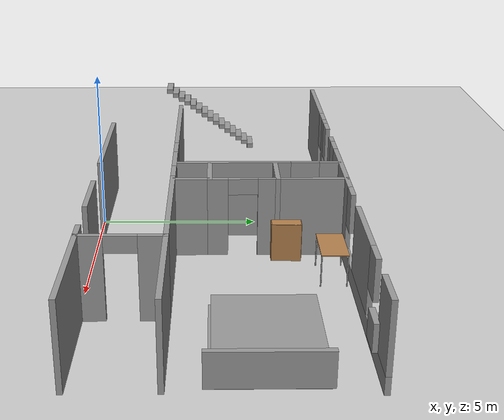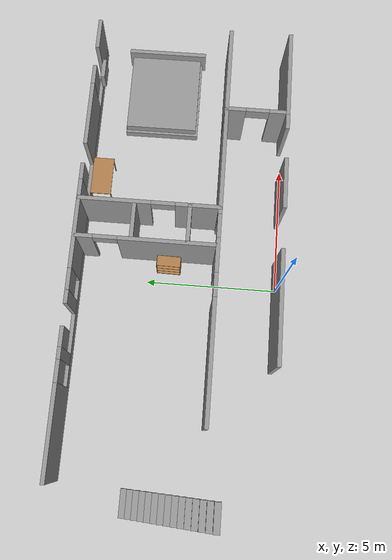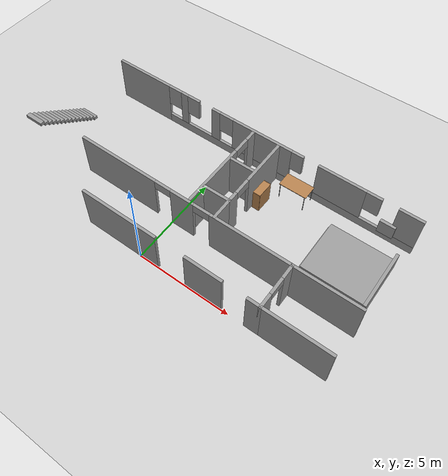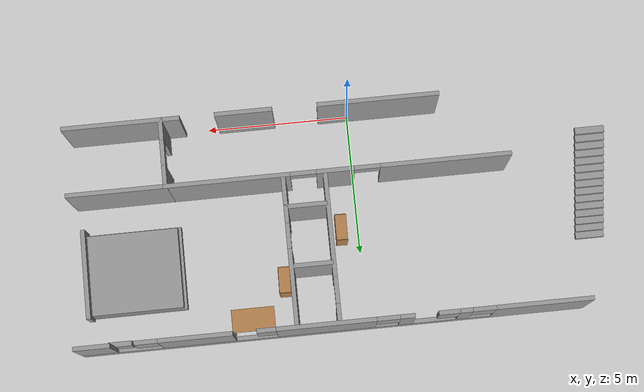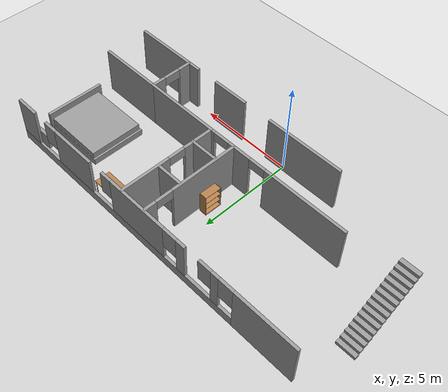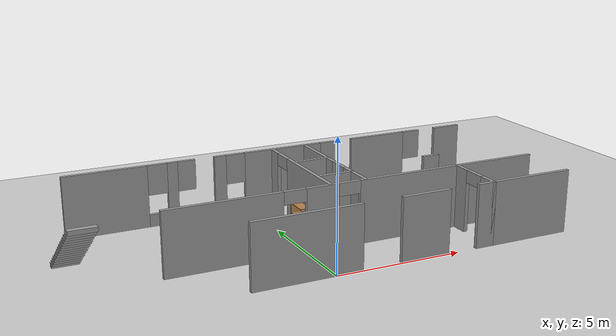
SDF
<sdf version="1.6">
 <world name="default">
  <model name="ground_plane">
   <static>1</static>
   <link name="link">
    <collision name="collision">
     <geometry><plane><normal>0 0 1</normal><size>100 100</size></plane></geometry>
     <surface>
      <contact><collide_bitmask>65535</collide_bitmask></contact>
      <friction><ode><mu>100</mu><mu2>50</mu2></ode></friction>
     </surface>
    </collision>
    <visual name="visual">
     <cast_shadows>0</cast_shadows>
     <geometry><plane><normal>0 0 1</normal><size>100 100</size></plane></geometry>
     <material>
      <script><uri>file://media/materials/scripts/gazebo.material</uri><name>Gazebo/Grey</name></script>
     </material>
    </visual>
   </link>
  </model>
  <model name="spruce1st">
   <pose>-3.08285 0.81707 0 0 -0 0</pose>
   <link name="Stairs_0">
    <visual name="Stairs_0_Visual_0">
     <pose>-5.10481 4.33782 0.083333 0 -0 0</pose>
     <geometry><box><size>1 0.233333 0.166667</size></box></geometry>
     <material>
      <script><uri>file://media/materials/scripts/gazebo.material</uri><name>Gazebo/Grey</name></script>
      <ambient>1 1 1 1</ambient>
     </material>
     <meta><layer>0</layer></meta>
    </visual>
    <collision name="Stairs_0_Collision_0">
     <geometry><box><size>1 0.233333 0.166667</size></box></geometry>
     <pose>-5.10481 4.33782 0.083333 0 -0 0</pose>
    </collision>
    <visual name="Stairs_0_Visual_1">
     <pose>-5.10481 4.10449 0.25 0 -0 0</pose>
     <geometry><box><size>1 0.233333 0.166667</size></box></geometry>
     <material>
      <script><uri>file://media/materials/scripts/gazebo.material</uri><name>Gazebo/Grey</name></script>
      <ambient>1 1 1 1</ambient>
     </material>
     <meta><layer>0</layer></meta>
    </visual>
    <collision name="Stairs_0_Collision_1">
     <geometry><box><size>1 0.233333 0.166667</size></box></geometry>
     <pose>-5.10481 4.10449 0.25 0 -0 0</pose>
    </collision>
    <visual name="Stairs_0_Visual_2">
     <pose>-5.10481 3.87116 0.416667 0 -0 0</pose>
     <geometry><box><size>1 0.233333 0.166667</size></box></geometry>
     <material>
      <script><uri>file://media/materials/scripts/gazebo.material</uri><name>Gazebo/Grey</name></script>
      <ambient>1 1 1 1</ambient>
     </material>
     <meta><layer>0</layer></meta>
    </visual>
    <collision name="Stairs_0_Collision_2">
     <geometry><box><size>1 0.233333 0.166667</size></box></geometry>
     <pose>-5.10481 3.87116 0.416667 0 -0 0</pose>
    </collision>
    <visual name="Stairs_0_Visual_3">
     <pose>-5.10481 3.63782 0.583333 0 -0 0</pose>
     <geometry><box><size>1 0.233333 0.166667</size></box></geometry>
     <material>
      <script><uri>file://media/materials/scripts/gazebo.material</uri><name>Gazebo/Grey</name></script>
      <ambient>1 1 1 1</ambient>
     </material>
     <meta><layer>0</layer></meta>
    </visual>
    <collision name="Stairs_0_Collision_3">
     <geometry><box><size>1 0.233333 0.166667</size></box></geometry>
     <pose>-5.10481 3.63782 0.583333 0 -0 0</pose>
    </collision>
    <visual name="Stairs_0_Visual_4">
     <pose>-5.10481 3.40449 0.75 0 -0 0</pose>
     <geometry><box><size>1 0.233333 0.166667</size></box></geometry>
     <material>
      <script><uri>file://media/materials/scripts/gazebo.material</uri><name>Gazebo/Grey</name></script>
      <ambient>1 1 1 1</ambient>
     </material>
     <meta><layer>0</layer></meta>
    </visual>
    <collision name="Stairs_0_Collision_4">
     <geometry><box><size>1 0.233333 0.166667</size></box></geometry>
     <pose>-5.10481 3.40449 0.75 0 -0 0</pose>
    </collision>
    <visual name="Stairs_0_Visual_5">
     <pose>-5.10481 3.17116 0.916667 0 -0 0</pose>
     <geometry><box><size>1 0.233333 0.166667</size></box></geometry>
     <material>
      <script><uri>file://media/materials/scripts/gazebo.material</uri><name>Gazebo/Grey</name></script>
      <ambient>1 1 1 1</ambient>
     </material>
     <meta><layer>0</layer></meta>
    </visual>
    <collision name="Stairs_0_Collision_5">
     <geometry><box><size>1 0.233333 0.166667</size></box></geometry>
     <pose>-5.10481 3.17116 0.916667 0 -0 0</pose>
    </collision>
    <visual name="Stairs_0_Visual_6">
     <pose>-5.10481 2.93782 1.08333 0 -0 0</pose>
     <geometry><box><size>1 0.233333 0.166667</size></box></geometry>
     <material>
      <script><uri>file://media/materials/scripts/gazebo.material</uri><name>Gazebo/Grey</name></script>
      <ambient>1 1 1 1</ambient>
     </material>
     <meta><layer>0</layer></meta>
    </visual>
    <collision name="Stairs_0_Collision_6">
     <geometry><box><size>1 0.233333 0.166667</size></box></geometry>
     <pose>-5.10481 2.93782 1.08333 0 -0 0</pose>
    </collision>
    <visual name="Stairs_0_Visual_7">
     <pose>-5.10481 2.70449 1.25 0 -0 0</pose>
     <geometry><box><size>1 0.233333 0.166667</size></box></geometry>
     <material>
      <script><uri>file://media/materials/scripts/gazebo.material</uri><name>Gazebo/Grey</name></script>
      <ambient>1 1 1 1</ambient>
     </material>
     <meta><layer>0</layer></meta>
    </visual>
    <collision name="Stairs_0_Collision_7">
     <geometry><box><size>1 0.233333 0.166667</size></box></geometry>
     <pose>-5.10481 2.70449 1.25 0 -0 0</pose>
    </collision>
    <visual name="Stairs_0_Visual_8">
     <pose>-5.10481 2.47116 1.41667 0 -0 0</pose>
     <geometry><box><size>1 0.233333 0.166667</size></box></geometry>
     <material>
      <script><uri>file://media/materials/scripts/gazebo.material</uri><name>Gazebo/Grey</name></script>
      <ambient>1 1 1 1</ambient>
     </material>
     <meta><layer>0</layer></meta>
    </visual>
    <collision name="Stairs_0_Collision_8">
     <geometry><box><size>1 0.233333 0.166667</size></box></geometry>
     <pose>-5.10481 2.47116 1.41667 0 -0 0</pose>
    </collision>
    <visual name="Stairs_0_Visual_9">
     <pose>-5.10481 2.23782 1.58333 0 -0 0</pose>
     <geometry><box><size>1 0.233333 0.166667</size></box></geometry>
     <material>
      <script><uri>file://media/materials/scripts/gazebo.material</uri><name>Gazebo/Grey</name></script>
      <ambient>1 1 1 1</ambient>
     </material>
     <meta><layer>0</layer></meta>
    </visual>
    <collision name="Stairs_0_Collision_9">
     <geometry><box><size>1 0.233333 0.166667</size></box></geometry>
     <pose>-5.10481 2.23782 1.58333 0 -0 0</pose>
    </collision>
    <visual name="Stairs_0_Visual_10">
     <pose>-5.10481 2.00449 1.75 0 -0 0</pose>
     <geometry><box><size>1 0.233333 0.166667</size></box></geometry>
     <material>
      <script><uri>file://media/materials/scripts/gazebo.material</uri><name>Gazebo/Grey</name></script>
      <ambient>1 1 1 1</ambient>
     </material>
     <meta><layer>0</layer></meta>
    </visual>
    <collision name="Stairs_0_Collision_10">
     <geometry><box><size>1 0.233333 0.166667</size></box></geometry>
     <pose>-5.10481 2.00449 1.75 0 -0 0</pose>
    </collision>
    <visual name="Stairs_0_Visual_11">
     <pose>-5.10481 1.77116 1.91667 0 -0 0</pose>
     <geometry><box><size>1 0.233333 0.166667</size></box></geometry>
     <material>
      <script><uri>file://media/materials/scripts/gazebo.material</uri><name>Gazebo/Grey</name></script>
      <ambient>1 1 1 1</ambient>
     </material>
     <meta><layer>0</layer></meta>
    </visual>
    <collision name="Stairs_0_Collision_11">
     <geometry><box><size>1 0.233333 0.166667</size></box></geometry>
     <pose>-5.10481 1.77116 1.91667 0 -0 0</pose>
    </collision>
    <visual name="Stairs_0_Visual_12">
     <pose>-5.10481 1.53782 2.08333 0 -0 0</pose>
     <geometry><box><size>1 0.233333 0.166667</size></box></geometry>
     <material>
      <script><uri>file://media/materials/scripts/gazebo.material</uri><name>Gazebo/Grey</name></script>
      <ambient>1 1 1 1</ambient>
     </material>
     <meta><layer>0</layer></meta>
    </visual>
    <collision name="Stairs_0_Collision_12">
     <geometry><box><size>1 0.233333 0.166667</size></box></geometry>
     <pose>-5.10481 1.53782 2.08333 0 -0 0</pose>
    </collision>
    <visual name="Stairs_0_Visual_13">
     <pose>-5.10481 1.30449 2.25 0 -0 0</pose>
     <geometry><box><size>1 0.233333 0.166667</size></box></geometry>
     <material>
      <script><uri>file://media/materials/scripts/gazebo.material</uri><name>Gazebo/Grey</name></script>
      <ambient>1 1 1 1</ambient>
     </material>
     <meta><layer>0</layer></meta>
    </visual>
    <collision name="Stairs_0_Collision_13">
     <geometry><box><size>1 0.233333 0.166667</size></box></geometry>
     <pose>-5.10481 1.30449 2.25 0 -0 0</pose>
    </collision>
    <visual name="Stairs_0_Visual_14">
     <pose>-5.10481 1.07116 2.41667 0 -0 0</pose>
     <geometry><box><size>1 0.233333 0.166667</size></box></geometry>
     <material>
      <script><uri>file://media/materials/scripts/gazebo.material</uri><name>Gazebo/Grey</name></script>
      <ambient>1 1 1 1</ambient>
     </material>
     <meta><layer>0</layer></meta>
    </visual>
    <collision name="Stairs_0_Collision_14">
     <geometry><box><size>1 0.233333 0.166667</size></box></geometry>
     <pose>-5.10481 1.07116 2.41667 0 -0 0</pose>
    </collision>
   </link>
   <link name="Wall_4">
    <pose>4.27021 6.84274 0 0 -0 0</pose>
    <visual name="Wall_4_Visual_0">
     <pose>-7.14725 0 1.25 0 -0 0</pose>
     <geometry><box><size>3.30928 0.15 2.5</size></box></geometry>
     <material>
      <script><uri>file://media/materials/scripts/gazebo.material</uri><name>Gazebo/Grey</name></script>
      <ambient>1 1 1 1</ambient>
     </material>
     <meta><layer>0</layer></meta>
    </visual>
    <collision name="Wall_4_Collision_0">
     <geometry><box><size>3.30928 0.15 2.5</size></box></geometry>
     <pose>-7.14725 0 1.25 0 -0 0</pose>
    </collision>
    <visual name="Wall_4_Visual_1">
     <pose>1.65464 0 0.25 0 -0 0</pose>
     <geometry><box><size>14.2945 0.15 0.5</size></box></geometry>
     <material>
      <script><uri>file://media/materials/scripts/gazebo.material</uri><name>Gazebo/Grey</name></script>
      <ambient>1 1 1 1</ambient>
     </material>
     <meta><layer>0</layer></meta>
    </visual>
    <collision name="Wall_4_Collision_1">
     <geometry><box><size>14.2945 0.15 0.5</size></box></geometry>
     <pose>1.65464 0 0.25 0 -0 0</pose>
    </collision>
    <visual name="Wall_4_Visual_2">
     <pose>-4.48027 0 1.5 0 -0 0</pose>
     <geometry><box><size>0.424693 0.15 2</size></box></geometry>
     <material>
      <script><uri>file://media/materials/scripts/gazebo.material</uri><name>Gazebo/Grey</name></script>
      <ambient>1 1 1 1</ambient>
     </material>
     <meta><layer>0</layer></meta>
    </visual>
    <collision name="Wall_4_Collision_2">
     <geometry><box><size>0.424693 0.15 2</size></box></geometry>
     <pose>-4.48027 0 1.5 0 -0 0</pose>
    </collision>
    <visual name="Wall_4_Visual_3">
     <pose>-2.49014 0 1.5 0 -0 0</pose>
     <geometry><box><size>0.501236 0.15 2</size></box></geometry>
     <material>
      <script><uri>file://media/materials/scripts/gazebo.material</uri><name>Gazebo/Grey</name></script>
      <ambient>1 1 1 1</ambient>
     </material>
     <meta><layer>0</layer></meta>
    </visual>
    <collision name="Wall_4_Collision_3">
     <geometry><box><size>0.501236 0.15 2</size></box></geometry>
     <pose>-2.49014 0 1.5 0 -0 0</pose>
    </collision>
    <visual name="Wall_4_Visual_4">
     <pose>0.265416 0 1.5 0 -0 0</pose>
     <geometry><box><size>3.40988 0.15 2</size></box></geometry>
     <material>
      <script><uri>file://media/materials/scripts/gazebo.material</uri><name>Gazebo/Grey</name></script>
      <ambient>1 1 1 1</ambient>
     </material>
     <meta><layer>0</layer></meta>
    </visual>
    <collision name="Wall_4_Collision_4">
     <geometry><box><size>3.40988 0.15 2</size></box></geometry>
     <pose>0.265416 0 1.5 0 -0 0</pose>
    </collision>
    <visual name="Wall_4_Visual_5">
     <pose>4.69139 0 1.5 0 -0 0</pose>
     <geometry><box><size>2.54082 0.15 2</size></box></geometry>
     <material>
      <script><uri>file://media/materials/scripts/gazebo.material</uri><name>Gazebo/Grey</name></script>
      <ambient>1 1 1 1</ambient>
     </material>
     <meta><layer>0</layer></meta>
    </visual>
    <collision name="Wall_4_Collision_5">
     <geometry><box><size>2.54082 0.15 2</size></box></geometry>
     <pose>4.69139 0 1.5 0 -0 0</pose>
    </collision>
    <visual name="Wall_4_Visual_6">
     <pose>8.1781 0 1.5 0 -0 0</pose>
     <geometry><box><size>1.24758 0.15 2</size></box></geometry>
     <material>
      <script><uri>file://media/materials/scripts/gazebo.material</uri><name>Gazebo/Grey</name></script>
      <ambient>1 1 1 1</ambient>
     </material>
     <meta><layer>0</layer></meta>
    </visual>
    <collision name="Wall_4_Collision_6">
     <geometry><box><size>1.24758 0.15 2</size></box></geometry>
     <pose>8.1781 0 1.5 0 -0 0</pose>
    </collision>
    <visual name="Wall_4_Visual_7">
     <pose>-5.09261 0 1.9 0 -0 0</pose>
     <geometry><box><size>0.8 0.15 1.2</size></box></geometry>
     <material>
      <script><uri>file://media/materials/scripts/gazebo.material</uri><name>Gazebo/Grey</name></script>
      <ambient>1 1 1 1</ambient>
     </material>
     <meta><layer>0</layer></meta>
    </visual>
    <collision name="Wall_4_Collision_7">
     <geometry><box><size>0.8 0.15 1.2</size></box></geometry>
     <pose>-5.09261 0 1.9 0 -0 0</pose>
    </collision>
    <visual name="Wall_4_Visual_8">
     <pose>-3.90434 0 1.9 0 -0 0</pose>
     <geometry><box><size>0.727161 0.15 1.2</size></box></geometry>
     <material>
      <script><uri>file://media/materials/scripts/gazebo.material</uri><name>Gazebo/Grey</name></script>
      <ambient>1 1 1 1</ambient>
     </material>
     <meta><layer>0</layer></meta>
    </visual>
    <collision name="Wall_4_Collision_8">
     <geometry><box><size>0.727161 0.15 1.2</size></box></geometry>
     <pose>-3.90434 0 1.9 0 -0 0</pose>
    </collision>
    <visual name="Wall_4_Visual_9">
     <pose>-1.83952 0 1.9 0 -0 0</pose>
     <geometry><box><size>0.8 0.15 1.2</size></box></geometry>
     <material>
      <script><uri>file://media/materials/scripts/gazebo.material</uri><name>Gazebo/Grey</name></script>
      <ambient>1 1 1 1</ambient>
     </material>
     <meta><layer>0</layer></meta>
    </visual>
    <collision name="Wall_4_Collision_9">
     <geometry><box><size>0.8 0.15 1.2</size></box></geometry>
     <pose>-1.83952 0 1.9 0 -0 0</pose>
    </collision>
    <visual name="Wall_4_Visual_10">
     <pose>2.29567 0 1.9 0 -0 0</pose>
     <geometry><box><size>0.650619 0.15 1.2</size></box></geometry>
     <material>
      <script><uri>file://media/materials/scripts/gazebo.material</uri><name>Gazebo/Grey</name></script>
      <ambient>1 1 1 1</ambient>
     </material>
     <meta><layer>0</layer></meta>
    </visual>
    <collision name="Wall_4_Collision_10">
     <geometry><box><size>0.650619 0.15 1.2</size></box></geometry>
     <pose>2.29567 0 1.9 0 -0 0</pose>
    </collision>
    <visual name="Wall_4_Visual_11">
     <pose>6.35806 0 1.9 0 -0 0</pose>
     <geometry><box><size>0.792515 0.15 1.2</size></box></geometry>
     <material>
      <script><uri>file://media/materials/scripts/gazebo.material</uri><name>Gazebo/Grey</name></script>
      <ambient>1 1 1 1</ambient>
     </material>
     <meta><layer>0</layer></meta>
    </visual>
    <collision name="Wall_4_Collision_11">
     <geometry><box><size>0.792515 0.15 1.2</size></box></geometry>
     <pose>6.35806 0 1.9 0 -0 0</pose>
    </collision>
   </link>
   <link name="Wall_57">
    <pose>9.5613 0.429699 0 0 -0 1.5708</pose>
    <visual name="Wall_57_Visual_0">
     <pose>-0.855988 0 1.25 0 -0 0</pose>
     <geometry><box><size>0.788025 0.15 2.5</size></box></geometry>
     <material>
      <script><uri>file://media/materials/scripts/gazebo.material</uri><name>Gazebo/Grey</name></script>
      <ambient>1 1 1 1</ambient>
     </material>
     <meta><layer>0</layer></meta>
    </visual>
    <collision name="Wall_57_Collision_0">
     <geometry><box><size>0.788025 0.15 2.5</size></box></geometry>
     <pose>-0.855988 0 1.25 0 -0 0</pose>
    </collision>
    <visual name="Wall_57_Visual_1">
     <pose>0.844012 0 1.25 0 -0 0</pose>
     <geometry><box><size>0.811975 0.15 2.5</size></box></geometry>
     <material>
      <script><uri>file://media/materials/scripts/gazebo.material</uri><name>Gazebo/Grey</name></script>
      <ambient>1 1 1 1</ambient>
     </material>
     <meta><layer>0</layer></meta>
    </visual>
    <collision name="Wall_57_Collision_1">
     <geometry><box><size>0.811975 0.15 2.5</size></box></geometry>
     <pose>0.844012 0 1.25 0 -0 0</pose>
    </collision>
    <visual name="Wall_57_Visual_2">
     <pose>-0.011975 0 2.25 0 -0 0</pose>
     <geometry><box><size>0.9 0.15 0.5</size></box></geometry>
     <material>
      <script><uri>file://media/materials/scripts/gazebo.material</uri><name>Gazebo/Grey</name></script>
      <ambient>1 1 1 1</ambient>
     </material>
     <meta><layer>0</layer></meta>
    </visual>
    <collision name="Wall_57_Collision_2">
     <geometry><box><size>0.9 0.15 0.5</size></box></geometry>
     <pose>-0.011975 0 2.25 0 -0 0</pose>
    </collision>
   </link>
   <link name="Wall_58">
    <collision name="Wall_58_Collision">
     <geometry><box><size>3.5 0.15 2.5</size></box></geometry>
     <pose>0 0 1.25 0 -0 0</pose>
    </collision>
    <visual name="Wall_58_Visual">
     <pose>0 0 1.25 0 -0 0</pose>
     <geometry><box><size>3.5 0.15 2.5</size></box></geometry>
     <material>
      <script><uri>file://media/materials/scripts/gazebo.material</uri><name>Gazebo/Grey</name></script>
      <ambient>1 1 1 1</ambient>
     </material>
     <meta><layer>0</layer></meta>
    </visual>
    <pose>11.2363 1.6047 0 0 -0 0</pose>
   </link>
   <link name="Wall_60">
    <collision name="Wall_60_Collision">
     <geometry><box><size>3.5 0.15 2.5</size></box></geometry>
     <pose>0 0 1.25 0 -0 0</pose>
    </collision>
    <visual name="Wall_60_Visual">
     <pose>0 0 1.25 0 -0 0</pose>
     <geometry><box><size>3.5 0.15 2.5</size></box></geometry>
     <material>
      <script><uri>file://media/materials/scripts/gazebo.material</uri><name>Gazebo/Grey</name></script>
      <ambient>1 1 1 1</ambient>
     </material>
     <meta><layer>0</layer></meta>
    </visual>
    <pose>11.2363 -0.745301 0 0 -0 0</pose>
   </link>
   <link name="Wall_62">
    <pose>3.6363 1.6047 0 0 -0 3.14159</pose>
    <visual name="Wall_62_Visual_0">
     <pose>-3.82063 0 1.25 0 -0 0</pose>
     <geometry><box><size>4.35874 0.15 2.5</size></box></geometry>
     <material>
      <script><uri>file://media/materials/scripts/gazebo.material</uri><name>Gazebo/Grey</name></script>
      <ambient>1 1 1 1</ambient>
     </material>
     <meta><layer>0</layer></meta>
    </visual>
    <collision name="Wall_62_Collision_0">
     <geometry><box><size>4.35874 0.15 2.5</size></box></geometry>
     <pose>-3.82063 0 1.25 0 -0 0</pose>
    </collision>
    <visual name="Wall_62_Visual_1">
     <pose>-0.0885 0 1.25 0 -0 0</pose>
     <geometry><box><size>1.30552 0.15 2.5</size></box></geometry>
     <material>
      <script><uri>file://media/materials/scripts/gazebo.material</uri><name>Gazebo/Grey</name></script>
      <ambient>1 1 1 1</ambient>
     </material>
     <meta><layer>0</layer></meta>
    </visual>
    <collision name="Wall_62_Collision_1">
     <geometry><box><size>1.30552 0.15 2.5</size></box></geometry>
     <pose>-0.0885 0 1.25 0 -0 0</pose>
    </collision>
    <visual name="Wall_62_Visual_2">
     <pose>3.73213 0 1.25 0 -0 0</pose>
     <geometry><box><size>4.53574 0.15 2.5</size></box></geometry>
     <material>
      <script><uri>file://media/materials/scripts/gazebo.material</uri><name>Gazebo/Grey</name></script>
      <ambient>1 1 1 1</ambient>
     </material>
     <meta><layer>0</layer></meta>
    </visual>
    <collision name="Wall_62_Collision_2">
     <geometry><box><size>4.53574 0.15 2.5</size></box></geometry>
     <pose>3.73213 0 1.25 0 -0 0</pose>
    </collision>
    <visual name="Wall_62_Visual_3">
     <pose>-1.19126 0 2.25 0 -0 0</pose>
     <geometry><box><size>0.9 0.15 0.5</size></box></geometry>
     <material>
      <script><uri>file://media/materials/scripts/gazebo.material</uri><name>Gazebo/Grey</name></script>
      <ambient>1 1 1 1</ambient>
     </material>
     <meta><layer>0</layer></meta>
    </visual>
    <collision name="Wall_62_Collision_3">
     <geometry><box><size>0.9 0.15 0.5</size></box></geometry>
     <pose>-1.19126 0 2.25 0 -0 0</pose>
    </collision>
    <visual name="Wall_62_Visual_4">
     <pose>1.01426 0 2.25 0 -0 0</pose>
     <geometry><box><size>0.9 0.15 0.5</size></box></geometry>
     <material>
      <script><uri>file://media/materials/scripts/gazebo.material</uri><name>Gazebo/Grey</name></script>
      <ambient>1 1 1 1</ambient>
     </material>
     <meta><layer>0</layer></meta>
    </visual>
    <collision name="Wall_62_Collision_4">
     <geometry><box><size>0.9 0.15 0.5</size></box></geometry>
     <pose>1.01426 0 2.25 0 -0 0</pose>
    </collision>
   </link>
   <link name="Wall_68">
    <collision name="Wall_68_Collision">
     <geometry><box><size>0.75 0.15 2.5</size></box></geometry>
     <pose>0 0 1.25 0 -0 0</pose>
    </collision>
    <visual name="Wall_68_Visual">
     <pose>0 0 1.25 0 -0 0</pose>
     <geometry><box><size>0.75 0.15 2.5</size></box></geometry>
     <material>
      <script><uri>file://media/materials/scripts/gazebo.material</uri><name>Gazebo/Grey</name></script>
      <ambient>1 1 1 1</ambient>
     </material>
     <meta><layer>0</layer></meta>
    </visual>
    <pose>9.2613 -0.745301 0 0 -0 3.14159</pose>
   </link>
   <link name="Wall_75">
    <collision name="Wall_75_Collision">
     <geometry><box><size>4.25 0.15 2.5</size></box></geometry>
     <pose>0 0 1.25 0 -0 0</pose>
    </collision>
    <visual name="Wall_75_Visual">
     <pose>0 0 1.25 0 -0 0</pose>
     <geometry><box><size>4.25 0.15 2.5</size></box></geometry>
     <material>
      <script><uri>file://media/materials/scripts/gazebo.material</uri><name>Gazebo/Grey</name></script>
      <ambient>1 1 1 1</ambient>
     </material>
     <meta><layer>0</layer></meta>
    </visual>
    <pose>2.0113 -0.745301 0 0 -0 0</pose>
   </link>
   <link name="Wall_78">
    <collision name="Wall_78_Collision">
     <geometry><box><size>2 0.15 2.5</size></box></geometry>
     <pose>0 0 1.25 0 -0 0</pose>
    </collision>
    <visual name="Wall_78_Visual">
     <pose>0 0 1.25 0 -0 0</pose>
     <geometry><box><size>2 0.15 2.5</size></box></geometry>
     <material>
      <script><uri>file://media/materials/scripts/gazebo.material</uri><name>Gazebo/Grey</name></script>
      <ambient>1 1 1 1</ambient>
     </material>
     <meta><layer>0</layer></meta>
    </visual>
    <pose>6.6863 -0.745301 0 0 -0 3.14159</pose>
   </link>
   <link name="Wall_82">
    <pose>4.07689 4.22305 0 0 0 -1.5708</pose>
    <visual name="Wall_82_Visual_0">
     <pose>-2.28703 0 1.25 0 -0 0</pose>
     <geometry><box><size>0.67593 0.15 2.5</size></box></geometry>
     <material>
      <script><uri>file://media/materials/scripts/gazebo.material</uri><name>Gazebo/Grey</name></script>
      <ambient>1 1 1 1</ambient>
     </material>
     <meta><layer>0</layer></meta>
    </visual>
    <collision name="Wall_82_Collision_0">
     <geometry><box><size>0.67593 0.15 2.5</size></box></geometry>
     <pose>-2.28703 0 1.25 0 -0 0</pose>
    </collision>
    <visual name="Wall_82_Visual_1">
     <pose>0.787965 0 1.25 0 -0 0</pose>
     <geometry><box><size>3.67407 0.15 2.5</size></box></geometry>
     <material>
      <script><uri>file://media/materials/scripts/gazebo.material</uri><name>Gazebo/Grey</name></script>
      <ambient>1 1 1 1</ambient>
     </material>
     <meta><layer>0</layer></meta>
    </visual>
    <collision name="Wall_82_Collision_1">
     <geometry><box><size>3.67407 0.15 2.5</size></box></geometry>
     <pose>0.787965 0 1.25 0 -0 0</pose>
    </collision>
    <visual name="Wall_82_Visual_2">
     <pose>-1.49907 0 2.25 0 -0 0</pose>
     <geometry><box><size>0.9 0.15 0.5</size></box></geometry>
     <material>
      <script><uri>file://media/materials/scripts/gazebo.material</uri><name>Gazebo/Grey</name></script>
      <ambient>1 1 1 1</ambient>
     </material>
     <meta><layer>0</layer></meta>
    </visual>
    <collision name="Wall_82_Collision_2">
     <geometry><box><size>0.9 0.15 0.5</size></box></geometry>
     <pose>-1.49907 0 2.25 0 -0 0</pose>
    </collision>
   </link>
   <link name="Wall_84">
    <collision name="Wall_84_Collision">
     <geometry><box><size>1.5 0.15 2.5</size></box></geometry>
     <pose>0 0 1.25 0 -0 0</pose>
    </collision>
    <visual name="Wall_84_Visual">
     <pose>0 0 1.25 0 -0 0</pose>
     <geometry><box><size>1.5 0.15 2.5</size></box></geometry>
     <material>
      <script><uri>file://media/materials/scripts/gazebo.material</uri><name>Gazebo/Grey</name></script>
      <ambient>1 1 1 1</ambient>
     </material>
     <meta><layer>0</layer></meta>
    </visual>
    <pose>4.85198 2.71947 0 0 -0 0</pose>
   </link>
   <link name="Wall_85">
    <collision name="Wall_85_Collision">
     <geometry><box><size>1.25 0.15 2.5</size></box></geometry>
     <pose>0 0 1.25 0 -0 0</pose>
    </collision>
    <visual name="Wall_85_Visual">
     <pose>0 0 1.25 0 -0 0</pose>
     <geometry><box><size>1.25 0.15 2.5</size></box></geometry>
     <material>
      <script><uri>file://media/materials/scripts/gazebo.material</uri><name>Gazebo/Grey</name></script>
      <ambient>1 1 1 1</ambient>
     </material>
     <meta><layer>0</layer></meta>
    </visual>
    <pose>5.52698 2.16947 0 0 0 -1.5708</pose>
   </link>
   <link name="Wall_87">
    <pose>5.52698 4.76947 0 0 -0 1.5708</pose>
    <visual name="Wall_87_Visual_0">
     <pose>-1.81206 0 1.25 0 -0 0</pose>
     <geometry><box><size>0.625886 0.15 2.5</size></box></geometry>
     <material>
      <script><uri>file://media/materials/scripts/gazebo.material</uri><name>Gazebo/Grey</name></script>
      <ambient>1 1 1 1</ambient>
     </material>
     <meta><layer>0</layer></meta>
    </visual>
    <collision name="Wall_87_Collision_0">
     <geometry><box><size>0.625886 0.15 2.5</size></box></geometry>
     <pose>-1.81206 0 1.25 0 -0 0</pose>
    </collision>
    <visual name="Wall_87_Visual_1">
     <pose>0.762943 0 1.25 0 -0 0</pose>
     <geometry><box><size>2.72411 0.15 2.5</size></box></geometry>
     <material>
      <script><uri>file://media/materials/scripts/gazebo.material</uri><name>Gazebo/Grey</name></script>
      <ambient>1 1 1 1</ambient>
     </material>
     <meta><layer>0</layer></meta>
    </visual>
    <collision name="Wall_87_Collision_1">
     <geometry><box><size>2.72411 0.15 2.5</size></box></geometry>
     <pose>0.762943 0 1.25 0 -0 0</pose>
    </collision>
    <visual name="Wall_87_Visual_2">
     <pose>-1.04911 0 2.25 0 -0 0</pose>
     <geometry><box><size>0.9 0.15 0.5</size></box></geometry>
     <material>
      <script><uri>file://media/materials/scripts/gazebo.material</uri><name>Gazebo/Grey</name></script>
      <ambient>1 1 1 1</ambient>
     </material>
     <meta><layer>0</layer></meta>
    </visual>
    <collision name="Wall_87_Collision_2">
     <geometry><box><size>0.9 0.15 0.5</size></box></geometry>
     <pose>-1.04911 0 2.25 0 -0 0</pose>
    </collision>
   </link>
   <link name="Wall_89">
    <collision name="Wall_89_Collision">
     <geometry><box><size>1.5 0.15 2.5</size></box></geometry>
     <pose>0 0 1.25 0 -0 0</pose>
    </collision>
    <visual name="Wall_89_Visual">
     <pose>0 0 1.25 0 -0 0</pose>
     <geometry><box><size>1.5 0.15 2.5</size></box></geometry>
     <material>
      <script><uri>file://media/materials/scripts/gazebo.material</uri><name>Gazebo/Grey</name></script>
      <ambient>1 1 1 1</ambient>
     </material>
     <meta><layer>0</layer></meta>
    </visual>
    <pose>4.85198 4.77128 0 0 -0 0</pose>
   </link>
   <link name="Window_37">
    <collision name="Window_37_Collision">
     <geometry><box><size>0.8 0.17 0.8</size></box></geometry>
     <pose>0 0 0.4 0 -0 0</pose>
    </collision>
    <visual name="Window_37_Visual">
     <pose>0 0 0.4 0 -0 0</pose>
     <geometry><box><size>0.8 0.17 0.8</size></box></geometry>
     <material>
      <script><uri>file://media/materials/scripts/gazebo.material</uri><name>Gazebo/Grey</name></script>
     </material>
    </visual>
    <pose>11.65 6.70794 0.5 0 -0 0</pose>
   </link>
   <static>1</static>
  </model>
  <model name="bedtry1_clone">
   <link name="link_1">
    <pose>-1.11426 0.018994 0.114995 0 -0 0</pose>
    <inertial>
     <mass>0.506131</mass>
     <inertia>
      <ixx>0.462337</ixx>
      <ixy>0</ixy>
      <ixz>0</ixz>
      <iyy>0.0441055</iyy>
      <iyz>0</iyz>
      <izz>0.420361</izz>
     </inertia>
    </inertial>
    <visual name="visual">
     <geometry><box><size>0.158906 3.15297 1.01018</size></box></geometry>
     <material>
      <lighting>1</lighting>
      <script><uri>file://media/materials/scripts/gazebo.material</uri><name>Gazebo/Grey</name></script>
      <shader type="pixel"><normal_map>__default__</normal_map></shader>
      <ambient>0.3 0.3 0.3 1</ambient>
      <diffuse>0.7 0.7 0.7 1</diffuse>
      <specular>0.01 0.01 0.01 1</specular>
      <emissive>0 0 0 1</emissive>
     </material>
    </visual>
    <collision name="collision">
     <geometry><box><size>0.158906 3.15297 1.01018</size></box></geometry>
     <surface>
      <friction>
       <ode><mu>1</mu><mu2>1</mu2><fdir1>0 0 0</fdir1><slip1>0</slip1><slip2>0</slip2></ode>
       <torsional>
        <coefficient>1</coefficient>
        <patch_radius>0</patch_radius>
        <surface_radius>0</surface_radius>
        <use_patch_radius>1</use_patch_radius>
        <ode><slip>0</slip></ode>
       </torsional>
      </friction>
      <bounce><restitution_coefficient>0</restitution_coefficient><threshold>1e+06</threshold></bounce>
      <contact>
       <collide_without_contact>0</collide_without_contact>
       <collide_without_contact_bitmask>1</collide_without_contact_bitmask>
       <collide_bitmask>1</collide_bitmask>
       <ode>
        <soft_cfm>0</soft_cfm>
        <soft_erp>0.2</soft_erp>
        <kp>1e+13</kp>
        <kd>1</kd>
        <max_vel>0.01</max_vel>
        <min_depth>0</min_depth>
       </ode>
       <bullet>
        <split_impulse>1</split_impulse>
        <split_impulse_penetration_threshold>-0.01</split_impulse_penetration_threshold>
        <soft_cfm>0</soft_cfm>
        <soft_erp>0.2</soft_erp>
        <kp>1e+13</kp>
        <kd>1</kd>
       </bullet>
      </contact>
     </surface>
    </collision>
   </link>
   <link name="link_2">
    <pose>0.540571 0.000416 -0.229697 0 -0 0</pose>
    <inertial>
     <mass>3.41387</mass>
     <inertia><ixx>2.48377</ixx><ixy>0</ixy><ixz>0</ixz><iyy>3.45159</iyy><iyz>0</iyz><izz>5.87135</izz></inertia>
    </inertial>
    <visual name="visual">
     <geometry><box><size>3.46699 2.93567 0.335414</size></box></geometry>
     <material>
      <lighting>1</lighting>
      <script><uri>file://media/materials/scripts/gazebo.material</uri><name>Gazebo/Grey</name></script>
      <shader type="pixel"><normal_map>__default__</normal_map></shader>
      <ambient>0.3 0.3 0.3 1</ambient>
      <diffuse>0.7 0.7 0.7 1</diffuse>
      <specular>0.01 0.01 0.01 1</specular>
      <emissive>0 0 0 1</emissive>
     </material>
    </visual>
    <collision name="collision">
     <geometry><box><size>3.46699 2.93567 0.335414</size></box></geometry>
     <surface>
      <friction>
       <ode><mu>1</mu><mu2>1</mu2><fdir1>0 0 0</fdir1><slip1>0</slip1><slip2>0</slip2></ode>
       <torsional>
        <coefficient>1</coefficient>
        <patch_radius>0</patch_radius>
        <surface_radius>0</surface_radius>
        <use_patch_radius>1</use_patch_radius>
        <ode><slip>0</slip></ode>
       </torsional>
      </friction>
      <bounce><restitution_coefficient>0</restitution_coefficient><threshold>1e+06</threshold></bounce>
      <contact>
       <collide_without_contact>0</collide_without_contact>
       <collide_without_contact_bitmask>1</collide_without_contact_bitmask>
       <collide_bitmask>1</collide_bitmask>
       <ode>
        <soft_cfm>0</soft_cfm>
        <soft_erp>0.2</soft_erp>
        <kp>1e+13</kp>
        <kd>1</kd>
        <max_vel>0.01</max_vel>
        <min_depth>0</min_depth>
       </ode>
       <bullet>
        <split_impulse>1</split_impulse>
        <split_impulse_penetration_threshold>-0.01</split_impulse_penetration_threshold>
        <soft_cfm>0</soft_cfm>
        <soft_erp>0.2</soft_erp>
        <kp>1e+13</kp>
        <kd>1</kd>
       </bullet>
      </contact>
     </surface>
    </collision>
   </link>
   <link name="link_3">
    <pose>0.573695 -0.01941 0.114702 0 -0 0</pose>
    <inertial>
     <mass>3.04536</mass>
     <inertia><ixx>2.05172</ixx><ixy>0</ixy><ixz>0</ixz><iyy>2.63138</iyy><iyz>0</iyz><izz>4.62552</izz></inertia>
    </inertial>
    <visual name="visual">
     <geometry><box><size>3.20239 2.82333 0.336824</size></box></geometry>
     <material>
      <lighting>1</lighting>
      <script><uri>file://media/materials/scripts/gazebo.material</uri><name>Gazebo/Grey</name></script>
      <shader type="pixel"/>
      <ambient>0.3 0.3 0.3 1</ambient>
      <diffuse>0.7 0.7 0.7 1</diffuse>
      <specular>0.01 0.01 0.01 1</specular>
      <emissive>0 0 0 1</emissive>
     </material>
    </visual>
    <collision name="collision">
     <geometry><box><size>3.20239 2.82333 0.336824</size></box></geometry>
     <surface>
      <friction>
       <ode><mu>1</mu><mu2>1</mu2><fdir1>0 0 0</fdir1><slip1>0</slip1><slip2>0</slip2></ode>
       <torsional>
        <coefficient>1</coefficient>
        <patch_radius>0</patch_radius>
        <surface_radius>0</surface_radius>
        <use_patch_radius>1</use_patch_radius>
        <ode><slip>0</slip></ode>
       </torsional>
      </friction>
      <bounce><restitution_coefficient>0</restitution_coefficient><threshold>1e+06</threshold></bounce>
      <contact>
       <collide_without_contact>0</collide_without_contact>
       <collide_without_contact_bitmask>1</collide_without_contact_bitmask>
       <collide_bitmask>1</collide_bitmask>
       <ode>
        <soft_cfm>0</soft_cfm>
        <soft_erp>0.2</soft_erp>
        <kp>1e+13</kp>
        <kd>1</kd>
        <max_vel>0.01</max_vel>
        <min_depth>0</min_depth>
       </ode>
       <bullet>
        <split_impulse>1</split_impulse>
        <split_impulse_penetration_threshold>-0.01</split_impulse_penetration_threshold>
        <soft_cfm>0</soft_cfm>
        <soft_erp>0.2</soft_erp>
        <kp>1e+13</kp>
        <kd>1</kd>
       </bullet>
      </contact>
     </surface>
    </collision>
   </link>
   <joint name="link_1_JOINT_2" type="fixed">
    <parent>link_1</parent>
    <child>link_3</child>
    <physics>
     <ode><limit><cfm>0</cfm><erp>0.2</erp></limit><suspension><cfm>0</cfm><erp>0.2</erp></suspension></ode>
    </physics>
   </joint>
   <joint name="link_2_JOINT_0" type="fixed">
    <parent>link_2</parent>
    <child>link_1</child>
    <physics>
     <ode><limit><cfm>0</cfm><erp>0.2</erp></limit><suspension><cfm>0</cfm><erp>0.2</erp></suspension></ode>
    </physics>
   </joint>
   <joint name="link_3_JOINT_1" type="fixed">
    <parent>link_3</parent>
    <child>link_2</child>
    <physics>
     <ode><limit><cfm>0</cfm><erp>0.2</erp></limit><suspension><cfm>0</cfm><erp>0.2</erp></suspension></ode>
    </physics>
   </joint>
   <static>0</static>
   <pose>8.52567 4.96723 0.397404 0 0 -3.13921</pose>
  </model>
  <model name="table_3">
   <static>1</static>
   <link name="link">
    <collision name="surface">
     <pose>0 0 1 0 -0 0</pose>
     <geometry><box><size>1.5 0.8 0.03</size></box></geometry>
     <surface><friction><ode><mu>0.6</mu><mu2>0.6</mu2></ode></friction></surface>
    </collision>
    <visual name="visual1">
     <pose>0 0 1 0 -0 0</pose>
     <geometry><box><size>1.5 0.8 0.03</size></box></geometry>
     <material>
      <script><uri>file://media/materials/scripts/gazebo.material</uri><name>Gazebo/Wood</name></script>
     </material>
    </visual>
    <collision name="front_left_leg">
     <pose>0.68 0.38 0.5 0 -0 0</pose>
     <geometry><cylinder><radius>0.02</radius><length>1</length></cylinder></geometry>
    </collision>
    <visual name="front_left_leg">
     <pose>0.68 0.38 0.5 0 -0 0</pose>
     <geometry><cylinder><radius>0.02</radius><length>1</length></cylinder></geometry>
     <material>
      <script><uri>file://media/materials/scripts/gazebo.material</uri><name>Gazebo/Grey</name></script>
     </material>
    </visual>
    <collision name="front_right_leg">
     <pose>0.68 -0.38 0.5 0 -0 0</pose>
     <geometry><cylinder><radius>0.02</radius><length>1</length></cylinder></geometry>
    </collision>
    <visual name="front_right_leg">
     <pose>0.68 -0.38 0.5 0 -0 0</pose>
     <geometry><cylinder><radius>0.02</radius><length>1</length></cylinder></geometry>
     <material>
      <script><uri>file://media/materials/scripts/gazebo.material</uri><name>Gazebo/Grey</name></script>
     </material>
    </visual>
    <collision name="back_right_leg">
     <pose>-0.68 -0.38 0.5 0 -0 0</pose>
     <geometry><cylinder><radius>0.02</radius><length>1</length></cylinder></geometry>
    </collision>
    <visual name="back_right_leg">
     <pose>-0.68 -0.38 0.5 0 -0 0</pose>
     <geometry><cylinder><radius>0.02</radius><length>1</length></cylinder></geometry>
     <material>
      <script><uri>file://media/materials/scripts/gazebo.material</uri><name>Gazebo/Grey</name></script>
     </material>
    </visual>
    <collision name="back_left_leg">
     <pose>-0.68 0.38 0.5 0 -0 0</pose>
     <geometry><cylinder><radius>0.02</radius><length>1</length></cylinder></geometry>
    </collision>
    <visual name="back_left_leg">
     <pose>-0.68 0.38 0.5 0 -0 0</pose>
     <geometry><cylinder><radius>0.02</radius><length>1</length></cylinder></geometry>
     <material>
      <script><uri>file://media/materials/scripts/gazebo.material</uri><name>Gazebo/Grey</name></script>
     </material>
    </visual>
   </link>
   <pose>3.95075 7.10137 0 0 -0 0</pose>
  </model>
  <model name="bookshelf_clone">
   <static>1</static>
   <link name="link">
    <inertial><mass>1</mass></inertial>
    <collision name="back">
     <pose>0 0.005 0.6 0 -0 0</pose>
     <geometry><box><size>0.9 0.01 1.2</size></box></geometry>
    </collision>
    <visual name="visual1">
     <pose>0 0.005 0.6 0 -0 0</pose>
     <geometry><box><size>0.9 0.01 1.2</size></box></geometry>
     <material>
      <script><uri>file://media/materials/scripts/gazebo.material</uri><name>Gazebo/Wood</name></script>
     </material>
    </visual>
    <collision name="left_side">
     <pose>0.45 -0.195 0.6 0 -0 0</pose>
     <geometry><box><size>0.02 0.4 1.2</size></box></geometry>
    </collision>
    <visual name="visual2">
     <pose>0.45 -0.195 0.6 0 -0 0</pose>
     <geometry><box><size>0.02 0.4 1.2</size></box></geometry>
     <material>
      <script><uri>file://media/materials/scripts/gazebo.material</uri><name>Gazebo/Wood</name></script>
     </material>
    </visual>
    <collision name="right_side">
     <pose>-0.45 -0.195 0.6 0 -0 0</pose>
     <geometry><box><size>0.02 0.4 1.2</size></box></geometry>
    </collision>
    <visual name="visual3">
     <pose>-0.45 -0.195 0.6 0 -0 0</pose>
     <geometry><box><size>0.02 0.4 1.2</size></box></geometry>
     <material>
      <script><uri>file://media/materials/scripts/gazebo.material</uri><name>Gazebo/Wood</name></script>
     </material>
    </visual>
    <collision name="bottom">
     <pose>0 -0.195 0.03 0 -0 0</pose>
     <geometry><box><size>0.88 0.4 0.06</size></box></geometry>
    </collision>
    <visual name="visual4">
     <pose>0 -0.195 0.03 0 -0 0</pose>
     <geometry><box><size>0.88 0.4 0.06</size></box></geometry>
     <material>
      <script><uri>file://media/materials/scripts/gazebo.material</uri><name>Gazebo/Wood</name></script>
     </material>
    </visual>
    <collision name="top">
     <pose>0 -0.195 1.19 0 -0 0</pose>
     <geometry><box><size>0.88 0.4 0.02</size></box></geometry>
    </collision>
    <visual name="visual5">
     <pose>0 -0.195 1.19 0 -0 0</pose>
     <geometry><box><size>0.88 0.4 0.02</size></box></geometry>
     <material>
      <script><uri>file://media/materials/scripts/gazebo.material</uri><name>Gazebo/Wood</name></script>
     </material>
    </visual>
    <collision name="low_shelf">
     <pose>0 -0.195 0.43 0 -0 0</pose>
     <geometry><box><size>0.88 0.4 0.02</size></box></geometry>
    </collision>
    <visual name="visual6">
     <pose>0 -0.195 0.43 0 -0 0</pose>
     <geometry><box><size>0.88 0.4 0.02</size></box></geometry>
     <material>
      <script><uri>file://media/materials/scripts/gazebo.material</uri><name>Gazebo/Wood</name></script>
     </material>
    </visual>
    <collision name="high_shelf">
     <pose>0 -0.195 0.8 0 -0 0</pose>
     <geometry><box><size>0.88 0.4 0.02</size></box></geometry>
    </collision>
    <visual name="visual7">
     <pose>0 -0.195 0.8 0 -0 0</pose>
     <geometry><box><size>0.88 0.4 0.02</size></box></geometry>
     <material>
      <script><uri>file://media/materials/scripts/gazebo.material</uri><name>Gazebo/Wood</name></script>
     </material>
    </visual>
   </link>
   <pose>0.802188 4.1913 0 0 0 -1.58791</pose>
  </model>
  <model name="bookshelf_clone_0">
   <static>1</static>
   <link name="link">
    <inertial><mass>1</mass></inertial>
    <collision name="back">
     <pose>0 0.005 0.6 0 -0 0</pose>
     <geometry><box><size>0.9 0.01 1.2</size></box></geometry>
    </collision>
    <visual name="visual1">
     <pose>0 0.005 0.6 0 -0 0</pose>
     <geometry><box><size>0.9 0.01 1.2</size></box></geometry>
     <material>
      <script><uri>file://media/materials/scripts/gazebo.material</uri><name>Gazebo/Wood</name></script>
     </material>
    </visual>
    <collision name="left_side">
     <pose>0.45 -0.195 0.6 0 -0 0</pose>
     <geometry><box><size>0.02 0.4 1.2</size></box></geometry>
    </collision>
    <visual name="visual2">
     <pose>0.45 -0.195 0.6 0 -0 0</pose>
     <geometry><box><size>0.02 0.4 1.2</size></box></geometry>
     <material>
      <script><uri>file://media/materials/scripts/gazebo.material</uri><name>Gazebo/Wood</name></script>
     </material>
    </visual>
    <collision name="right_side">
     <pose>-0.45 -0.195 0.6 0 -0 0</pose>
     <geometry><box><size>0.02 0.4 1.2</size></box></geometry>
    </collision>
    <visual name="visual3">
     <pose>-0.45 -0.195 0.6 0 -0 0</pose>
     <geometry><box><size>0.02 0.4 1.2</size></box></geometry>
     <material>
      <script><uri>file://media/materials/scripts/gazebo.material</uri><name>Gazebo/Wood</name></script>
     </material>
    </visual>
    <collision name="bottom">
     <pose>0 -0.195 0.03 0 -0 0</pose>
     <geometry><box><size>0.88 0.4 0.06</size></box></geometry>
    </collision>
    <visual name="visual4">
     <pose>0 -0.195 0.03 0 -0 0</pose>
     <geometry><box><size>0.88 0.4 0.06</size></box></geometry>
     <material>
      <script><uri>file://media/materials/scripts/gazebo.material</uri><name>Gazebo/Wood</name></script>
     </material>
    </visual>
    <collision name="top">
     <pose>0 -0.195 1.19 0 -0 0</pose>
     <geometry><box><size>0.88 0.4 0.02</size></box></geometry>
    </collision>
    <visual name="visual5">
     <pose>0 -0.195 1.19 0 -0 0</pose>
     <geometry><box><size>0.88 0.4 0.02</size></box></geometry>
     <material>
      <script><uri>file://media/materials/scripts/gazebo.material</uri><name>Gazebo/Wood</name></script>
     </material>
    </visual>
    <collision name="low_shelf">
     <pose>0 -0.195 0.43 0 -0 0</pose>
     <geometry><box><size>0.88 0.4 0.02</size></box></geometry>
    </collision>
    <visual name="visual6">
     <pose>0 -0.195 0.43 0 -0 0</pose>
     <geometry><box><size>0.88 0.4 0.02</size></box></geometry>
     <material>
      <script><uri>file://media/materials/scripts/gazebo.material</uri><name>Gazebo/Wood</name></script>
     </material>
    </visual>
    <collision name="high_shelf">
     <pose>0 -0.195 0.8 0 -0 0</pose>
     <geometry><box><size>0.88 0.4 0.02</size></box></geometry>
    </collision>
    <visual name="visual7">
     <pose>0 -0.195 0.8 0 -0 0</pose>
     <geometry><box><size>0.88 0.4 0.02</size></box></geometry>
     <material>
      <script><uri>file://media/materials/scripts/gazebo.material</uri><name>Gazebo/Wood</name></script>
     </material>
    </visual>
   </link>
   <pose>2.94822 5.84703 0 0 0 -1.58791</pose>
  </model>
 </world>
</sdf>
